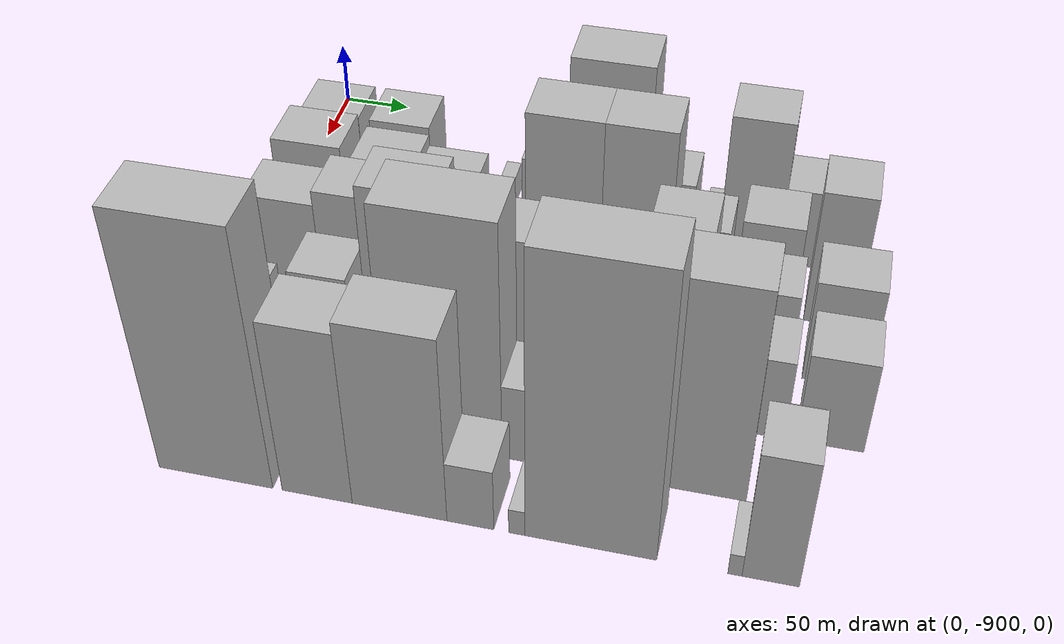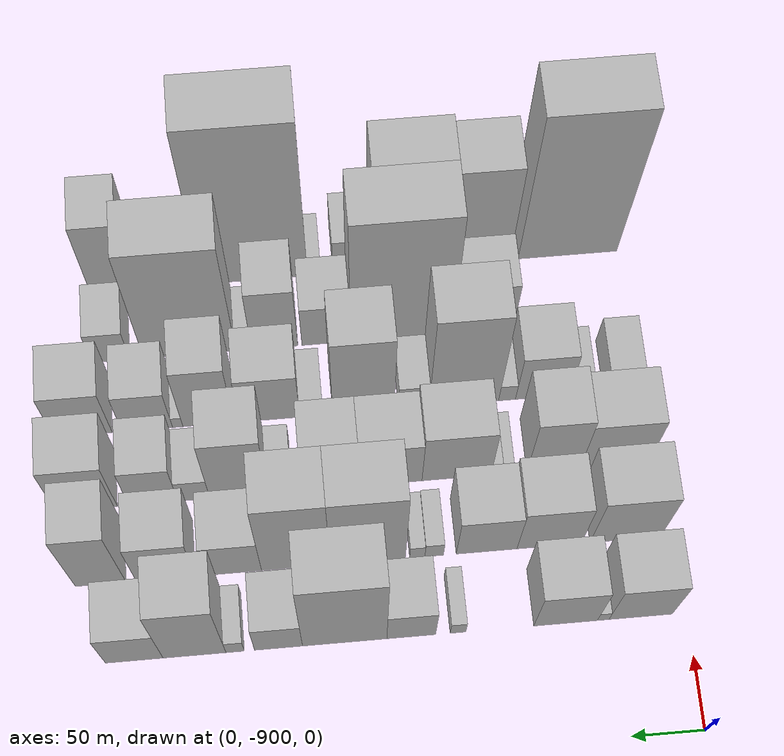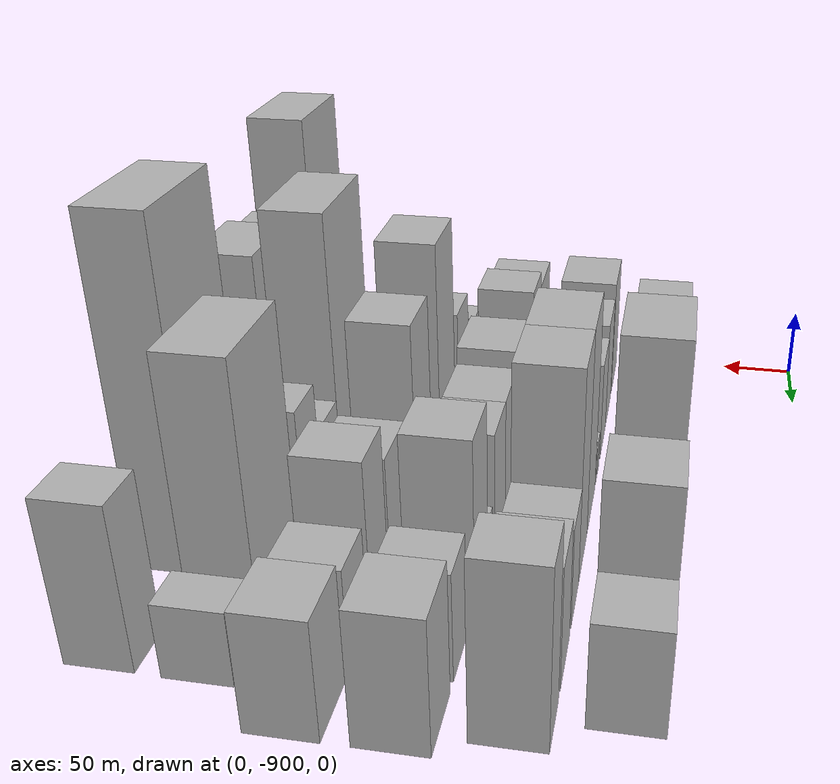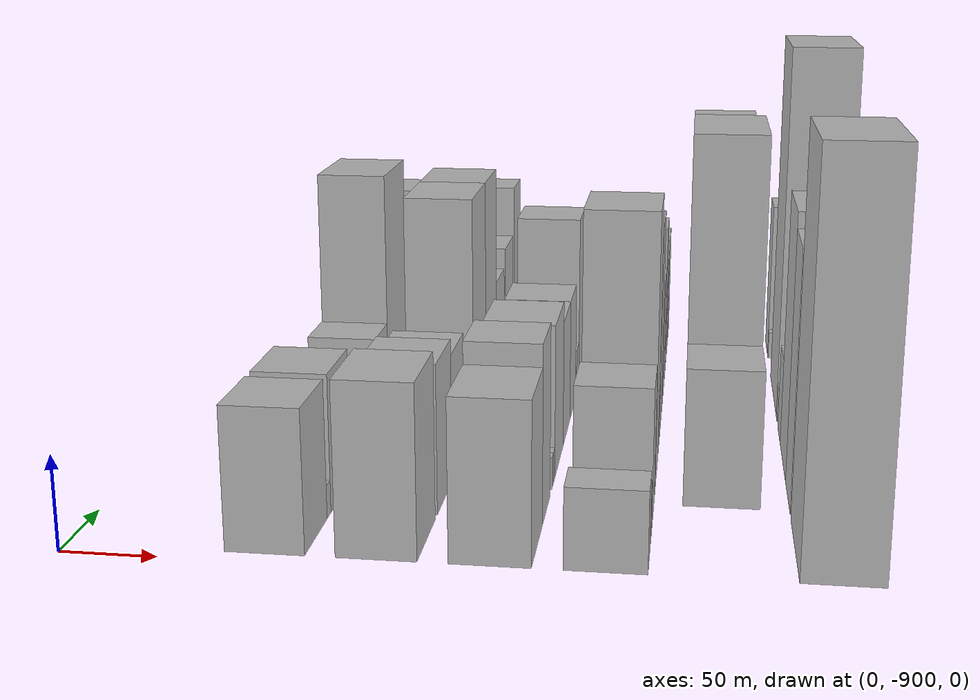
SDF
<sdf version="1.6">
 <world name="default">
  <model name="building_1">
   <static>1</static>
   <pose>100.0000 -868.0949 0 0.000000 0.000000 0.000000</pose>
   <link name="link">
    <pose>0 0 37.50 0 0 0</pose>
    <collision name="collision"><geometry><box><size>40.0000 43.8102 75.0000</size></box></geometry></collision>
    <visual name="visual">
     <cast_shadows>0</cast_shadows>
     <geometry><box><size>40.0000 43.8102 75.0000</size></box></geometry>
     <material>
      <script>
       <uri>model://HANNAS_wall/materials/scripts</uri>
       <uri>model://HANNAS_wall/materials/textures</uri>
       <name>vrc/HANNAS_wall</name>
      </script>
     </material>
    </visual>
   </link>
  </model>
  <model name="building_2">
   <static>1</static>
   <pose>100.0000 -842.1908 0 0.000000 0.000000 0.000000</pose>
   <link name="link">
    <pose>0 0 9.00 0 0 0</pose>
    <collision name="collision"><geometry><box><size>40.0000 7.9980 18.0000</size></box></geometry></collision>
    <visual name="visual">
     <cast_shadows>0</cast_shadows>
     <geometry><box><size>40.0000 7.9980 18.0000</size></box></geometry>
     <material>
      <script>
       <uri>model://HANNAS_wall/materials/scripts</uri>
       <uri>model://HANNAS_wall/materials/textures</uri>
       <name>vrc/HANNAS_wall</name>
      </script>
     </material>
    </visual>
   </link>
  </model>
  <model name="building_3">
   <static>1</static>
   <pose>100.0000 -816.2501 0 0.000000 0.000000 0.000000</pose>
   <link name="link">
    <pose>0 0 37.50 0 0 0</pose>
    <collision name="collision"><geometry><box><size>40.0000 43.8835 75.0000</size></box></geometry></collision>
    <visual name="visual">
     <cast_shadows>0</cast_shadows>
     <geometry><box><size>40.0000 43.8835 75.0000</size></box></geometry>
     <material>
      <script>
       <uri>model://HANNAS_wall/materials/scripts</uri>
       <uri>model://HANNAS_wall/materials/textures</uri>
       <name>vrc/HANNAS_wall</name>
      </script>
     </material>
    </visual>
   </link>
  </model>
  <model name="building_4">
   <static>1</static>
   <pose>100.0000 -742.1931 0 0.000000 0.000000 0.000000</pose>
   <link name="link">
    <pose>0 0 12.00 0 0 0</pose>
    <collision name="collision"><geometry><box><size>40.0000 10.7435 24.0000</size></box></geometry></collision>
    <visual name="visual">
     <cast_shadows>0</cast_shadows>
     <geometry><box><size>40.0000 10.7435 24.0000</size></box></geometry>
     <material>
      <script>
       <uri>model://HANNAS_wall/materials/scripts</uri>
       <uri>model://HANNAS_wall/materials/textures</uri>
       <name>vrc/HANNAS_wall</name>
      </script>
     </material>
    </visual>
   </link>
  </model>
  <model name="building_5">
   <static>1</static>
   <pose>100.0000 -710.1252 0 0.000000 0.000000 0.000000</pose>
   <link name="link">
    <pose>0 0 30.00 0 0 0</pose>
    <collision name="collision"><geometry><box><size>40.0000 33.3923 60.0000</size></box></geometry></collision>
    <visual name="visual">
     <cast_shadows>0</cast_shadows>
     <geometry><box><size>40.0000 33.3923 60.0000</size></box></geometry>
     <material>
      <script>
       <uri>model://HANNAS_wall/materials/scripts</uri>
       <uri>model://HANNAS_wall/materials/textures</uri>
       <name>vrc/HANNAS_wall</name>
      </script>
     </material>
    </visual>
   </link>
  </model>
  <model name="building_6">
   <static>1</static>
   <pose>100.0000 -664.6134 0 0.000000 0.000000 0.000000</pose>
   <link name="link">
    <pose>0 0 75.00 0 0 0</pose>
    <collision name="collision"><geometry><box><size>40.0000 57.6314 150.0000</size></box></geometry></collision>
    <visual name="visual">
     <cast_shadows>0</cast_shadows>
     <geometry><box><size>40.0000 57.6314 150.0000</size></box></geometry>
     <material>
      <script>
       <uri>model://HANNAS_wall/materials/scripts</uri>
       <uri>model://HANNAS_wall/materials/textures</uri>
       <name>vrc/HANNAS_wall</name>
      </script>
     </material>
    </visual>
   </link>
  </model>
  <model name="building_7">
   <static>1</static>
   <pose>100.0000 -619.4495 0 0.000000 0.000000 0.000000</pose>
   <link name="link">
    <pose>0 0 28.50 0 0 0</pose>
    <collision name="collision"><geometry><box><size>40.0000 32.6963 57.0000</size></box></geometry></collision>
    <visual name="visual">
     <cast_shadows>0</cast_shadows>
     <geometry><box><size>40.0000 32.6963 57.0000</size></box></geometry>
     <material>
      <script>
       <uri>model://HANNAS_wall/materials/scripts</uri>
       <uri>model://HANNAS_wall/materials/textures</uri>
       <name>vrc/HANNAS_wall</name>
      </script>
     </material>
    </visual>
   </link>
  </model>
  <model name="building_8">
   <static>1</static>
   <pose>100.0000 -589.8575 0 0.000000 0.000000 0.000000</pose>
   <link name="link">
    <pose>0 0 13.50 0 0 0</pose>
    <collision name="collision"><geometry><box><size>40.0000 12.4877 27.0000</size></box></geometry></collision>
    <visual name="visual">
     <cast_shadows>0</cast_shadows>
     <geometry><box><size>40.0000 12.4877 27.0000</size></box></geometry>
     <material>
      <script>
       <uri>model://HANNAS_wall/materials/scripts</uri>
       <uri>model://HANNAS_wall/materials/textures</uri>
       <name>vrc/HANNAS_wall</name>
      </script>
     </material>
    </visual>
   </link>
  </model>
  <model name="building_9">
   <static>1</static>
   <pose>100.0000 -562.2363 0 0.000000 0.000000 0.000000</pose>
   <link name="link">
    <pose>0 0 60.00 0 0 0</pose>
    <collision name="collision"><geometry><box><size>40.0000 42.7547 120.0000</size></box></geometry></collision>
    <visual name="visual">
     <cast_shadows>0</cast_shadows>
     <geometry><box><size>40.0000 42.7547 120.0000</size></box></geometry>
     <material>
      <script>
       <uri>model://HANNAS_wall/materials/scripts</uri>
       <uri>model://HANNAS_wall/materials/textures</uri>
       <name>vrc/HANNAS_wall</name>
      </script>
     </material>
    </visual>
   </link>
  </model>
  <model name="building_10">
   <static>1</static>
   <pose>100.0000 -521.3223 0 0.000000 0.000000 0.000000</pose>
   <link name="link">
    <pose>0 0 33.00 0 0 0</pose>
    <collision name="collision"><geometry><box><size>40.0000 39.0733 66.0000</size></box></geometry></collision>
    <visual name="visual">
     <cast_shadows>0</cast_shadows>
     <geometry><box><size>40.0000 39.0733 66.0000</size></box></geometry>
     <material>
      <script>
       <uri>model://HANNAS_wall/materials/scripts</uri>
       <uri>model://HANNAS_wall/materials/textures</uri>
       <name>vrc/HANNAS_wall</name>
      </script>
     </material>
    </visual>
   </link>
  </model>
  <model name="building_47">
   <static>1</static>
   <pose>155.0000 -865.2218 0 0.000000 0.000000 0.000000</pose>
   <link name="link">
    <pose>0 0 45.00 0 0 0</pose>
    <collision name="collision"><geometry><box><size>40.0000 49.5564 90.0000</size></box></geometry></collision>
    <visual name="visual">
     <cast_shadows>0</cast_shadows>
     <geometry><box><size>40.0000 49.5564 90.0000</size></box></geometry>
     <material>
      <script>
       <uri>model://HANNAS_wall/materials/scripts</uri>
       <uri>model://HANNAS_wall/materials/textures</uri>
       <name>vrc/HANNAS_wall</name>
      </script>
     </material>
    </visual>
   </link>
  </model>
  <model name="building_48">
   <static>1</static>
   <pose>155.0000 -811.8589 0 0.000000 0.000000 0.000000</pose>
   <link name="link">
    <pose>0 0 40.50 0 0 0</pose>
    <collision name="collision"><geometry><box><size>40.0000 45.1695 81.0000</size></box></geometry></collision>
    <visual name="visual">
     <cast_shadows>0</cast_shadows>
     <geometry><box><size>40.0000 45.1695 81.0000</size></box></geometry>
     <material>
      <script>
       <uri>model://HANNAS_wall/materials/scripts</uri>
       <uri>model://HANNAS_wall/materials/textures</uri>
       <name>vrc/HANNAS_wall</name>
      </script>
     </material>
    </visual>
   </link>
  </model>
  <model name="building_49">
   <static>1</static>
   <pose>155.0000 -768.0839 0 0.000000 0.000000 0.000000</pose>
   <link name="link">
    <pose>0 0 36.00 0 0 0</pose>
    <collision name="collision"><geometry><box><size>40.0000 42.3805 72.0000</size></box></geometry></collision>
    <visual name="visual">
     <cast_shadows>0</cast_shadows>
     <geometry><box><size>40.0000 42.3805 72.0000</size></box></geometry>
     <material>
      <script>
       <uri>model://HANNAS_wall/materials/scripts</uri>
       <uri>model://HANNAS_wall/materials/textures</uri>
       <name>vrc/HANNAS_wall</name>
      </script>
     </material>
    </visual>
   </link>
  </model>
  <model name="building_50">
   <static>1</static>
   <pose>155.0000 -731.4142 0 0.000000 0.000000 0.000000</pose>
   <link name="link">
    <pose>0 0 13.50 0 0 0</pose>
    <collision name="collision"><geometry><box><size>40.0000 12.9589 27.0000</size></box></geometry></collision>
    <visual name="visual">
     <cast_shadows>0</cast_shadows>
     <geometry><box><size>40.0000 12.9589 27.0000</size></box></geometry>
     <material>
      <script>
       <uri>model://HANNAS_wall/materials/scripts</uri>
       <uri>model://HANNAS_wall/materials/textures</uri>
       <name>vrc/HANNAS_wall</name>
      </script>
     </material>
    </visual>
   </link>
  </model>
  <model name="building_51">
   <static>1</static>
   <pose>155.0000 -719.6520 0 0.000000 0.000000 0.000000</pose>
   <link name="link">
    <pose>0 0 12.00 0 0 0</pose>
    <collision name="collision"><geometry><box><size>40.0000 10.5655 24.0000</size></box></geometry></collision>
    <visual name="visual">
     <cast_shadows>0</cast_shadows>
     <geometry><box><size>40.0000 10.5655 24.0000</size></box></geometry>
     <material>
      <script>
       <uri>model://HANNAS_wall/materials/scripts</uri>
       <uri>model://HANNAS_wall/materials/textures</uri>
       <name>vrc/HANNAS_wall</name>
      </script>
     </material>
    </visual>
   </link>
  </model>
  <model name="building_52">
   <static>1</static>
   <pose>155.0000 -685.2314 0 0.000000 0.000000 0.000000</pose>
   <link name="link">
    <pose>0 0 70.50 0 0 0</pose>
    <collision name="collision"><geometry><box><size>40.0000 52.2758 141.0000</size></box></geometry></collision>
    <visual name="visual">
     <cast_shadows>0</cast_shadows>
     <geometry><box><size>40.0000 52.2758 141.0000</size></box></geometry>
     <material>
      <script>
       <uri>model://HANNAS_wall/materials/scripts</uri>
       <uri>model://HANNAS_wall/materials/textures</uri>
       <name>vrc/HANNAS_wall</name>
      </script>
     </material>
    </visual>
   </link>
  </model>
  <model name="building_53">
   <static>1</static>
   <pose>155.0000 -635.2812 0 0.000000 0.000000 0.000000</pose>
   <link name="link">
    <pose>0 0 70.50 0 0 0</pose>
    <collision name="collision"><geometry><box><size>40.0000 47.6245 141.0000</size></box></geometry></collision>
    <visual name="visual">
     <cast_shadows>0</cast_shadows>
     <geometry><box><size>40.0000 47.6245 141.0000</size></box></geometry>
     <material>
      <script>
       <uri>model://HANNAS_wall/materials/scripts</uri>
       <uri>model://HANNAS_wall/materials/textures</uri>
       <name>vrc/HANNAS_wall</name>
      </script>
     </material>
    </visual>
   </link>
  </model>
  <model name="building_54">
   <static>1</static>
   <pose>155.0000 -592.0700 0 0.000000 0.000000 0.000000</pose>
   <link name="link">
    <pose>0 0 33.00 0 0 0</pose>
    <collision name="collision"><geometry><box><size>40.0000 38.7978 66.0000</size></box></geometry></collision>
    <visual name="visual">
     <cast_shadows>0</cast_shadows>
     <geometry><box><size>40.0000 38.7978 66.0000</size></box></geometry>
     <material>
      <script>
       <uri>model://HANNAS_wall/materials/scripts</uri>
       <uri>model://HANNAS_wall/materials/textures</uri>
       <name>vrc/HANNAS_wall</name>
      </script>
     </material>
    </visual>
   </link>
  </model>
  <model name="building_55">
   <static>1</static>
   <pose>155.0000 -545.2420 0 0.000000 0.000000 0.000000</pose>
   <link name="link">
    <pose>0 0 39.00 0 0 0</pose>
    <collision name="collision"><geometry><box><size>40.0000 40.8582 78.0000</size></box></geometry></collision>
    <visual name="visual">
     <cast_shadows>0</cast_shadows>
     <geometry><box><size>40.0000 40.8582 78.0000</size></box></geometry>
     <material>
      <script>
       <uri>model://HANNAS_wall/materials/scripts</uri>
       <uri>model://HANNAS_wall/materials/textures</uri>
       <name>vrc/HANNAS_wall</name>
      </script>
     </material>
    </visual>
   </link>
  </model>
  <model name="building_56">
   <static>1</static>
   <pose>155.0000 -500.3482 0 0.000000 0.000000 0.000000</pose>
   <link name="link">
    <pose>0 0 55.50 0 0 0</pose>
    <collision name="collision"><geometry><box><size>40.0000 34.9295 111.0000</size></box></geometry></collision>
    <visual name="visual">
     <cast_shadows>0</cast_shadows>
     <geometry><box><size>40.0000 34.9295 111.0000</size></box></geometry>
     <material>
      <script>
       <uri>model://HANNAS_wall/materials/scripts</uri>
       <uri>model://HANNAS_wall/materials/textures</uri>
       <name>vrc/HANNAS_wall</name>
      </script>
     </material>
    </visual>
   </link>
  </model>
  <model name="building_95">
   <static>1</static>
   <pose>210.0000 -865.4552 0 0.000000 0.000000 0.000000</pose>
   <link name="link">
    <pose>0 0 42.00 0 0 0</pose>
    <collision name="collision"><geometry><box><size>40.0000 49.0895 84.0000</size></box></geometry></collision>
    <visual name="visual">
     <cast_shadows>0</cast_shadows>
     <geometry><box><size>40.0000 49.0895 84.0000</size></box></geometry>
     <material>
      <script>
       <uri>model://HANNAS_wall/materials/scripts</uri>
       <uri>model://HANNAS_wall/materials/textures</uri>
       <name>vrc/HANNAS_wall</name>
      </script>
     </material>
    </visual>
   </link>
  </model>
  <model name="building_96">
   <static>1</static>
   <pose>210.0000 -821.8817 0 0.000000 0.000000 0.000000</pose>
   <link name="link">
    <pose>0 0 48.00 0 0 0</pose>
    <collision name="collision"><geometry><box><size>40.0000 38.0575 96.0000</size></box></geometry></collision>
    <visual name="visual">
     <cast_shadows>0</cast_shadows>
     <geometry><box><size>40.0000 38.0575 96.0000</size></box></geometry>
     <material>
      <script>
       <uri>model://HANNAS_wall/materials/scripts</uri>
       <uri>model://HANNAS_wall/materials/textures</uri>
       <name>vrc/HANNAS_wall</name>
      </script>
     </material>
    </visual>
   </link>
  </model>
  <model name="building_97">
   <static>1</static>
   <pose>210.0000 -789.0530 0 0.000000 0.000000 0.000000</pose>
   <link name="link">
    <pose>0 0 9.00 0 0 0</pose>
    <collision name="collision"><geometry><box><size>40.0000 7.5998 18.0000</size></box></geometry></collision>
    <visual name="visual">
     <cast_shadows>0</cast_shadows>
     <geometry><box><size>40.0000 7.5998 18.0000</size></box></geometry>
     <material>
      <script>
       <uri>model://HANNAS_wall/materials/scripts</uri>
       <uri>model://HANNAS_wall/materials/textures</uri>
       <name>vrc/HANNAS_wall</name>
      </script>
     </material>
    </visual>
   </link>
  </model>
  <model name="building_98">
   <static>1</static>
   <pose>210.0000 -781.3025 0 0.000000 0.000000 0.000000</pose>
   <link name="link">
    <pose>0 0 9.00 0 0 0</pose>
    <collision name="collision"><geometry><box><size>40.0000 7.9013 18.0000</size></box></geometry></collision>
    <visual name="visual">
     <cast_shadows>0</cast_shadows>
     <geometry><box><size>40.0000 7.9013 18.0000</size></box></geometry>
     <material>
      <script>
       <uri>model://HANNAS_wall/materials/scripts</uri>
       <uri>model://HANNAS_wall/materials/textures</uri>
       <name>vrc/HANNAS_wall</name>
      </script>
     </material>
    </visual>
   </link>
  </model>
  <model name="building_99">
   <static>1</static>
   <pose>210.0000 -752.8507 0 0.000000 0.000000 0.000000</pose>
   <link name="link">
    <pose>0 0 43.50 0 0 0</pose>
    <collision name="collision"><geometry><box><size>40.0000 49.0022 87.0000</size></box></geometry></collision>
    <visual name="visual">
     <cast_shadows>0</cast_shadows>
     <geometry><box><size>40.0000 49.0022 87.0000</size></box></geometry>
     <material>
      <script>
       <uri>model://HANNAS_wall/materials/scripts</uri>
       <uri>model://HANNAS_wall/materials/textures</uri>
       <name>vrc/HANNAS_wall</name>
      </script>
     </material>
    </visual>
   </link>
  </model>
  <model name="building_100">
   <static>1</static>
   <pose>210.0000 -706.1151 0 0.000000 0.000000 0.000000</pose>
   <link name="link">
    <pose>0 0 37.50 0 0 0</pose>
    <collision name="collision"><geometry><box><size>40.0000 44.4690 75.0000</size></box></geometry></collision>
    <visual name="visual">
     <cast_shadows>0</cast_shadows>
     <geometry><box><size>40.0000 44.4690 75.0000</size></box></geometry>
     <material>
      <script>
       <uri>model://HANNAS_wall/materials/scripts</uri>
       <uri>model://HANNAS_wall/materials/textures</uri>
       <name>vrc/HANNAS_wall</name>
      </script>
     </material>
    </visual>
   </link>
  </model>
  <model name="building_101">
   <static>1</static>
   <pose>210.0000 -663.8506 0 0.000000 0.000000 0.000000</pose>
   <link name="link">
    <pose>0 0 37.50 0 0 0</pose>
    <collision name="collision"><geometry><box><size>40.0000 40.0600 75.0000</size></box></geometry></collision>
    <visual name="visual">
     <cast_shadows>0</cast_shadows>
     <geometry><box><size>40.0000 40.0600 75.0000</size></box></geometry>
     <material>
      <script>
       <uri>model://HANNAS_wall/materials/scripts</uri>
       <uri>model://HANNAS_wall/materials/textures</uri>
       <name>vrc/HANNAS_wall</name>
      </script>
     </material>
    </visual>
   </link>
  </model>
  <model name="building_102">
   <static>1</static>
   <pose>210.0000 -628.2362 0 0.000000 0.000000 0.000000</pose>
   <link name="link">
    <pose>0 0 15.00 0 0 0</pose>
    <collision name="collision"><geometry><box><size>40.0000 17.1687 30.0000</size></box></geometry></collision>
    <visual name="visual">
     <cast_shadows>0</cast_shadows>
     <geometry><box><size>40.0000 17.1687 30.0000</size></box></geometry>
     <material>
      <script>
       <uri>model://HANNAS_wall/materials/scripts</uri>
       <uri>model://HANNAS_wall/materials/textures</uri>
       <name>vrc/HANNAS_wall</name>
      </script>
     </material>
    </visual>
   </link>
  </model>
  <model name="building_103">
   <static>1</static>
   <pose>210.0000 -599.2015 0 0.000000 0.000000 0.000000</pose>
   <link name="link">
    <pose>0 0 55.50 0 0 0</pose>
    <collision name="collision"><geometry><box><size>40.0000 40.9006 111.0000</size></box></geometry></collision>
    <visual name="visual">
     <cast_shadows>0</cast_shadows>
     <geometry><box><size>40.0000 40.9006 111.0000</size></box></geometry>
     <material>
      <script>
       <uri>model://HANNAS_wall/materials/scripts</uri>
       <uri>model://HANNAS_wall/materials/textures</uri>
       <name>vrc/HANNAS_wall</name>
      </script>
     </material>
    </visual>
   </link>
  </model>
  <model name="building_104">
   <static>1</static>
   <pose>210.0000 -567.5323 0 0.000000 0.000000 0.000000</pose>
   <link name="link">
    <pose>0 0 19.50 0 0 0</pose>
    <collision name="collision"><geometry><box><size>40.0000 22.4379 39.0000</size></box></geometry></collision>
    <visual name="visual">
     <cast_shadows>0</cast_shadows>
     <geometry><box><size>40.0000 22.4379 39.0000</size></box></geometry>
     <material>
      <script>
       <uri>model://HANNAS_wall/materials/scripts</uri>
       <uri>model://HANNAS_wall/materials/textures</uri>
       <name>vrc/HANNAS_wall</name>
      </script>
     </material>
    </visual>
   </link>
  </model>
  <model name="building_105">
   <static>1</static>
   <pose>210.0000 -539.0008 0 0.000000 0.000000 0.000000</pose>
   <link name="link">
    <pose>0 0 34.50 0 0 0</pose>
    <collision name="collision"><geometry><box><size>40.0000 34.6250 69.0000</size></box></geometry></collision>
    <visual name="visual">
     <cast_shadows>0</cast_shadows>
     <geometry><box><size>40.0000 34.6250 69.0000</size></box></geometry>
     <material>
      <script>
       <uri>model://HANNAS_wall/materials/scripts</uri>
       <uri>model://HANNAS_wall/materials/textures</uri>
       <name>vrc/HANNAS_wall</name>
      </script>
     </material>
    </visual>
   </link>
  </model>
  <model name="building_106">
   <static>1</static>
   <pose>210.0000 -492.1965 0 0.000000 0.000000 0.000000</pose>
   <link name="link">
    <pose>0 0 42.00 0 0 0</pose>
    <collision name="collision"><geometry><box><size>40.0000 42.9836 84.0000</size></box></geometry></collision>
    <visual name="visual">
     <cast_shadows>0</cast_shadows>
     <geometry><box><size>40.0000 42.9836 84.0000</size></box></geometry>
     <material>
      <script>
       <uri>model://HANNAS_wall/materials/scripts</uri>
       <uri>model://HANNAS_wall/materials/textures</uri>
       <name>vrc/HANNAS_wall</name>
      </script>
     </material>
    </visual>
   </link>
  </model>
  <model name="building_145">
   <static>1</static>
   <pose>265.0000 -877.4378 0 0.000000 0.000000 0.000000</pose>
   <link name="link">
    <pose>0 0 21.00 0 0 0</pose>
    <collision name="collision"><geometry><box><size>40.0000 25.1244 42.0000</size></box></geometry></collision>
    <visual name="visual">
     <cast_shadows>0</cast_shadows>
     <geometry><box><size>40.0000 25.1244 42.0000</size></box></geometry>
     <material>
      <script>
       <uri>model://HANNAS_wall/materials/scripts</uri>
       <uri>model://HANNAS_wall/materials/textures</uri>
       <name>vrc/HANNAS_wall</name>
      </script>
     </material>
    </visual>
   </link>
  </model>
  <model name="building_146">
   <static>1</static>
   <pose>265.0000 -847.9490 0 0.000000 0.000000 0.000000</pose>
   <link name="link">
    <pose>0 0 15.00 0 0 0</pose>
    <collision name="collision"><geometry><box><size>40.0000 15.8531 30.0000</size></box></geometry></collision>
    <visual name="visual">
     <cast_shadows>0</cast_shadows>
     <geometry><box><size>40.0000 15.8531 30.0000</size></box></geometry>
     <material>
      <script>
       <uri>model://HANNAS_wall/materials/scripts</uri>
       <uri>model://HANNAS_wall/materials/textures</uri>
       <name>vrc/HANNAS_wall</name>
      </script>
     </material>
    </visual>
   </link>
  </model>
  <model name="building_147">
   <static>1</static>
   <pose>265.0000 -820.6471 0 0.000000 0.000000 0.000000</pose>
   <link name="link">
    <pose>0 0 37.50 0 0 0</pose>
    <collision name="collision"><geometry><box><size>40.0000 38.7506 75.0000</size></box></geometry></collision>
    <visual name="visual">
     <cast_shadows>0</cast_shadows>
     <geometry><box><size>40.0000 38.7506 75.0000</size></box></geometry>
     <material>
      <script>
       <uri>model://HANNAS_wall/materials/scripts</uri>
       <uri>model://HANNAS_wall/materials/textures</uri>
       <name>vrc/HANNAS_wall</name>
      </script>
     </material>
    </visual>
   </link>
  </model>
  <model name="building_148">
   <static>1</static>
   <pose>265.0000 -795.1783 0 0.000000 0.000000 0.000000</pose>
   <link name="link">
    <pose>0 0 13.50 0 0 0</pose>
    <collision name="collision"><geometry><box><size>40.0000 12.1870 27.0000</size></box></geometry></collision>
    <visual name="visual">
     <cast_shadows>0</cast_shadows>
     <geometry><box><size>40.0000 12.1870 27.0000</size></box></geometry>
     <material>
      <script>
       <uri>model://HANNAS_wall/materials/scripts</uri>
       <uri>model://HANNAS_wall/materials/textures</uri>
       <name>vrc/HANNAS_wall</name>
      </script>
     </material>
    </visual>
   </link>
  </model>
  <model name="building_149">
   <static>1</static>
   <pose>265.0000 -763.9732 0 0.000000 0.000000 0.000000</pose>
   <link name="link">
    <pose>0 0 76.50 0 0 0</pose>
    <collision name="collision"><geometry><box><size>40.0000 50.2233 153.0000</size></box></geometry></collision>
    <visual name="visual">
     <cast_shadows>0</cast_shadows>
     <geometry><box><size>40.0000 50.2233 153.0000</size></box></geometry>
     <material>
      <script>
       <uri>model://HANNAS_wall/materials/scripts</uri>
       <uri>model://HANNAS_wall/materials/textures</uri>
       <name>vrc/HANNAS_wall</name>
      </script>
     </material>
    </visual>
   </link>
  </model>
  <model name="building_150">
   <static>1</static>
   <pose>265.0000 -727.8759 0 0.000000 0.000000 0.000000</pose>
   <link name="link">
    <pose>0 0 19.50 0 0 0</pose>
    <collision name="collision"><geometry><box><size>40.0000 21.9713 39.0000</size></box></geometry></collision>
    <visual name="visual">
     <cast_shadows>0</cast_shadows>
     <geometry><box><size>40.0000 21.9713 39.0000</size></box></geometry>
     <material>
      <script>
       <uri>model://HANNAS_wall/materials/scripts</uri>
       <uri>model://HANNAS_wall/materials/textures</uri>
       <name>vrc/HANNAS_wall</name>
      </script>
     </material>
    </visual>
   </link>
  </model>
  <model name="building_151">
   <static>1</static>
   <pose>265.0000 -691.7806 0 0.000000 0.000000 0.000000</pose>
   <link name="link">
    <pose>0 0 64.50 0 0 0</pose>
    <collision name="collision"><geometry><box><size>40.0000 44.2192 129.0000</size></box></geometry></collision>
    <visual name="visual">
     <cast_shadows>0</cast_shadows>
     <geometry><box><size>40.0000 44.2192 129.0000</size></box></geometry>
     <material>
      <script>
       <uri>model://HANNAS_wall/materials/scripts</uri>
       <uri>model://HANNAS_wall/materials/textures</uri>
       <name>vrc/HANNAS_wall</name>
      </script>
     </material>
    </visual>
   </link>
  </model>
  <model name="building_152">
   <static>1</static>
   <pose>265.0000 -654.3883 0 0.000000 0.000000 0.000000</pose>
   <link name="link">
    <pose>0 0 15.00 0 0 0</pose>
    <collision name="collision"><geometry><box><size>40.0000 16.5653 30.0000</size></box></geometry></collision>
    <visual name="visual">
     <cast_shadows>0</cast_shadows>
     <geometry><box><size>40.0000 16.5653 30.0000</size></box></geometry>
     <material>
      <script>
       <uri>model://HANNAS_wall/materials/scripts</uri>
       <uri>model://HANNAS_wall/materials/textures</uri>
       <name>vrc/HANNAS_wall</name>
      </script>
     </material>
    </visual>
   </link>
  </model>
  <model name="building_153">
   <static>1</static>
   <pose>265.0000 -624.5484 0 0.000000 0.000000 0.000000</pose>
   <link name="link">
    <pose>0 0 39.00 0 0 0</pose>
    <collision name="collision"><geometry><box><size>40.0000 43.1147 78.0000</size></box></geometry></collision>
    <visual name="visual">
     <cast_shadows>0</cast_shadows>
     <geometry><box><size>40.0000 43.1147 78.0000</size></box></geometry>
     <material>
      <script>
       <uri>model://HANNAS_wall/materials/scripts</uri>
       <uri>model://HANNAS_wall/materials/textures</uri>
       <name>vrc/HANNAS_wall</name>
      </script>
     </material>
    </visual>
   </link>
  </model>
  <model name="building_154">
   <static>1</static>
   <pose>265.0000 -580.7029 0 0.000000 0.000000 0.000000</pose>
   <link name="link">
    <pose>0 0 51.00 0 0 0</pose>
    <collision name="collision"><geometry><box><size>40.0000 36.5763 102.0000</size></box></geometry></collision>
    <visual name="visual">
     <cast_shadows>0</cast_shadows>
     <geometry><box><size>40.0000 36.5763 102.0000</size></box></geometry>
     <material>
      <script>
       <uri>model://HANNAS_wall/materials/scripts</uri>
       <uri>model://HANNAS_wall/materials/textures</uri>
       <name>vrc/HANNAS_wall</name>
      </script>
     </material>
    </visual>
   </link>
  </model>
  <model name="building_155">
   <static>1</static>
   <pose>265.0000 -558.7448 0 0.000000 0.000000 0.000000</pose>
   <link name="link">
    <pose>0 0 9.00 0 0 0</pose>
    <collision name="collision"><geometry><box><size>40.0000 7.3399 18.0000</size></box></geometry></collision>
    <visual name="visual">
     <cast_shadows>0</cast_shadows>
     <geometry><box><size>40.0000 7.3399 18.0000</size></box></geometry>
     <material>
      <script>
       <uri>model://HANNAS_wall/materials/scripts</uri>
       <uri>model://HANNAS_wall/materials/textures</uri>
       <name>vrc/HANNAS_wall</name>
      </script>
     </material>
    </visual>
   </link>
  </model>
  <model name="building_156">
   <static>1</static>
   <pose>265.0000 -537.0565 0 0.000000 0.000000 0.000000</pose>
   <link name="link">
    <pose>0 0 33.00 0 0 0</pose>
    <collision name="collision"><geometry><box><size>40.0000 36.0367 66.0000</size></box></geometry></collision>
    <visual name="visual">
     <cast_shadows>0</cast_shadows>
     <geometry><box><size>40.0000 36.0367 66.0000</size></box></geometry>
     <material>
      <script>
       <uri>model://HANNAS_wall/materials/scripts</uri>
       <uri>model://HANNAS_wall/materials/textures</uri>
       <name>vrc/HANNAS_wall</name>
      </script>
     </material>
    </visual>
   </link>
  </model>
  <model name="building_157">
   <static>1</static>
   <pose>265.0000 -491.2079 0 0.000000 0.000000 0.000000</pose>
   <link name="link">
    <pose>0 0 37.50 0 0 0</pose>
    <collision name="collision"><geometry><box><size>40.0000 41.6603 75.0000</size></box></geometry></collision>
    <visual name="visual">
     <cast_shadows>0</cast_shadows>
     <geometry><box><size>40.0000 41.6603 75.0000</size></box></geometry>
     <material>
      <script>
       <uri>model://HANNAS_wall/materials/scripts</uri>
       <uri>model://HANNAS_wall/materials/textures</uri>
       <name>vrc/HANNAS_wall</name>
      </script>
     </material>
    </visual>
   </link>
  </model>
  <model name="building_198">
   <static>1</static>
   <pose>320.0000 -784.0063 0 0.000000 0.000000 0.000000</pose>
   <link name="link">
    <pose>0 0 37.50 0 0 0</pose>
    <collision name="collision"><geometry><box><size>40.0000 44.6625 75.0000</size></box></geometry></collision>
    <visual name="visual">
     <cast_shadows>0</cast_shadows>
     <geometry><box><size>40.0000 44.6625 75.0000</size></box></geometry>
     <material>
      <script>
       <uri>model://HANNAS_wall/materials/scripts</uri>
       <uri>model://HANNAS_wall/materials/textures</uri>
       <name>vrc/HANNAS_wall</name>
      </script>
     </material>
    </visual>
   </link>
  </model>
  <model name="building_199">
   <static>1</static>
   <pose>320.0000 -724.4553 0 0.000000 0.000000 0.000000</pose>
   <link name="link">
    <pose>0 0 94.50 0 0 0</pose>
    <collision name="collision"><geometry><box><size>40.0000 74.4394 189.0000</size></box></geometry></collision>
    <visual name="visual">
     <cast_shadows>0</cast_shadows>
     <geometry><box><size>40.0000 74.4394 189.0000</size></box></geometry>
     <material>
      <script>
       <uri>model://HANNAS_wall/materials/scripts</uri>
       <uri>model://HANNAS_wall/materials/textures</uri>
       <name>vrc/HANNAS_wall</name>
      </script>
     </material>
    </visual>
   </link>
  </model>
  <model name="building_200">
   <static>1</static>
   <pose>320.0000 -669.4619 0 0.000000 0.000000 0.000000</pose>
   <link name="link">
    <pose>0 0 31.50 0 0 0</pose>
    <collision name="collision"><geometry><box><size>40.0000 35.5474 63.0000</size></box></geometry></collision>
    <visual name="visual">
     <cast_shadows>0</cast_shadows>
     <geometry><box><size>40.0000 35.5474 63.0000</size></box></geometry>
     <material>
      <script>
       <uri>model://HANNAS_wall/materials/scripts</uri>
       <uri>model://HANNAS_wall/materials/textures</uri>
       <name>vrc/HANNAS_wall</name>
      </script>
     </material>
    </visual>
   </link>
  </model>
  <model name="building_201">
   <static>1</static>
   <pose>320.0000 -631.8112 0 0.000000 0.000000 0.000000</pose>
   <link name="link">
    <pose>0 0 48.00 0 0 0</pose>
    <collision name="collision"><geometry><box><size>40.0000 33.7541 96.0000</size></box></geometry></collision>
    <visual name="visual">
     <cast_shadows>0</cast_shadows>
     <geometry><box><size>40.0000 33.7541 96.0000</size></box></geometry>
     <material>
      <script>
       <uri>model://HANNAS_wall/materials/scripts</uri>
       <uri>model://HANNAS_wall/materials/textures</uri>
       <name>vrc/HANNAS_wall</name>
      </script>
     </material>
    </visual>
   </link>
  </model>
  <model name="building_202">
   <static>1</static>
   <pose>320.0000 -609.2391 0 0.000000 0.000000 0.000000</pose>
   <link name="link">
    <pose>0 0 12.00 0 0 0</pose>
    <collision name="collision"><geometry><box><size>40.0000 11.3901 24.0000</size></box></geometry></collision>
    <visual name="visual">
     <cast_shadows>0</cast_shadows>
     <geometry><box><size>40.0000 11.3901 24.0000</size></box></geometry>
     <material>
      <script>
       <uri>model://HANNAS_wall/materials/scripts</uri>
       <uri>model://HANNAS_wall/materials/textures</uri>
       <name>vrc/HANNAS_wall</name>
      </script>
     </material>
    </visual>
   </link>
  </model>
  <model name="building_203">
   <static>1</static>
   <pose>320.0000 -570.0653 0 0.000000 0.000000 0.000000</pose>
   <link name="link">
    <pose>0 0 85.50 0 0 0</pose>
    <collision name="collision"><geometry><box><size>40.0000 66.9574 171.0000</size></box></geometry></collision>
    <visual name="visual">
     <cast_shadows>0</cast_shadows>
     <geometry><box><size>40.0000 66.9574 171.0000</size></box></geometry>
     <material>
      <script>
       <uri>model://HANNAS_wall/materials/scripts</uri>
       <uri>model://HANNAS_wall/materials/textures</uri>
       <name>vrc/HANNAS_wall</name>
      </script>
     </material>
    </visual>
   </link>
  </model>
  <model name="building_204">
   <static>1</static>
   <pose>320.0000 -512.7599 0 0.000000 0.000000 0.000000</pose>
   <link name="link">
    <pose>0 0 24.00 0 0 0</pose>
    <collision name="collision"><geometry><box><size>40.0000 27.6534 48.0000</size></box></geometry></collision>
    <visual name="visual">
     <cast_shadows>0</cast_shadows>
     <geometry><box><size>40.0000 27.6534 48.0000</size></box></geometry>
     <material>
      <script>
       <uri>model://HANNAS_wall/materials/scripts</uri>
       <uri>model://HANNAS_wall/materials/textures</uri>
       <name>vrc/HANNAS_wall</name>
      </script>
     </material>
    </visual>
   </link>
  </model>
  <model name="building_250">
   <static>1</static>
   <pose>375.0000 -853.1906 0 0.000000 0.000000 0.000000</pose>
   <link name="link">
    <pose>0 0 103.50 0 0 0</pose>
    <collision name="collision"><geometry><box><size>40.0000 73.6188 207.0000</size></box></geometry></collision>
    <visual name="visual">
     <cast_shadows>0</cast_shadows>
     <geometry><box><size>40.0000 73.6188 207.0000</size></box></geometry>
     <material>
      <script>
       <uri>model://HANNAS_wall/materials/scripts</uri>
       <uri>model://HANNAS_wall/materials/textures</uri>
       <name>vrc/HANNAS_wall</name>
      </script>
     </material>
    </visual>
   </link>
  </model>
  <model name="building_251">
   <static>1</static>
   <pose>375.0000 -788.2045 0 0.000000 0.000000 0.000000</pose>
   <link name="link">
    <pose>0 0 70.50 0 0 0</pose>
    <collision name="collision"><geometry><box><size>40.0000 44.3534 141.0000</size></box></geometry></collision>
    <visual name="visual">
     <cast_shadows>0</cast_shadows>
     <geometry><box><size>40.0000 44.3534 141.0000</size></box></geometry>
     <material>
      <script>
       <uri>model://HANNAS_wall/materials/scripts</uri>
       <uri>model://HANNAS_wall/materials/textures</uri>
       <name>vrc/HANNAS_wall</name>
      </script>
     </material>
    </visual>
   </link>
  </model>
  <model name="building_252">
   <static>1</static>
   <pose>375.0000 -736.6601 0 0.000000 0.000000 0.000000</pose>
   <link name="link">
    <pose>0 0 75.00 0 0 0</pose>
    <collision name="collision"><geometry><box><size>40.0000 58.7355 150.0000</size></box></geometry></collision>
    <visual name="visual">
     <cast_shadows>0</cast_shadows>
     <geometry><box><size>40.0000 58.7355 150.0000</size></box></geometry>
     <material>
      <script>
       <uri>model://HANNAS_wall/materials/scripts</uri>
       <uri>model://HANNAS_wall/materials/textures</uri>
       <name>vrc/HANNAS_wall</name>
      </script>
     </material>
    </visual>
   </link>
  </model>
  <model name="building_253">
   <static>1</static>
   <pose>375.0000 -692.9811 0 0.000000 0.000000 0.000000</pose>
   <link name="link">
    <pose>0 0 25.50 0 0 0</pose>
    <collision name="collision"><geometry><box><size>40.0000 28.6225 51.0000</size></box></geometry></collision>
    <visual name="visual">
     <cast_shadows>0</cast_shadows>
     <geometry><box><size>40.0000 28.6225 51.0000</size></box></geometry>
     <material>
      <script>
       <uri>model://HANNAS_wall/materials/scripts</uri>
       <uri>model://HANNAS_wall/materials/textures</uri>
       <name>vrc/HANNAS_wall</name>
      </script>
     </material>
    </visual>
   </link>
  </model>
  <model name="building_254">
   <static>1</static>
   <pose>375.0000 -664.7353 0 0.000000 0.000000 0.000000</pose>
   <link name="link">
    <pose>0 0 10.50 0 0 0</pose>
    <collision name="collision"><geometry><box><size>40.0000 9.8691 21.0000</size></box></geometry></collision>
    <visual name="visual">
     <cast_shadows>0</cast_shadows>
     <geometry><box><size>40.0000 9.8691 21.0000</size></box></geometry>
     <material>
      <script>
       <uri>model://HANNAS_wall/materials/scripts</uri>
       <uri>model://HANNAS_wall/materials/textures</uri>
       <name>vrc/HANNAS_wall</name>
      </script>
     </material>
    </visual>
   </link>
  </model>
  <model name="building_255">
   <static>1</static>
   <pose>375.0000 -620.7434 0 0.000000 0.000000 0.000000</pose>
   <link name="link">
    <pose>0 0 112.50 0 0 0</pose>
    <collision name="collision"><geometry><box><size>40.0000 78.1146 225.0000</size></box></geometry></collision>
    <visual name="visual">
     <cast_shadows>0</cast_shadows>
     <geometry><box><size>40.0000 78.1146 225.0000</size></box></geometry>
     <material>
      <script>
       <uri>model://HANNAS_wall/materials/scripts</uri>
       <uri>model://HANNAS_wall/materials/textures</uri>
       <name>vrc/HANNAS_wall</name>
      </script>
     </material>
    </visual>
   </link>
  </model>
  <model name="building_256">
   <static>1</static>
   <pose>375.0000 -536.4252 0 0.000000 0.000000 0.000000</pose>
   <link name="link">
    <pose>0 0 9.00 0 0 0</pose>
    <collision name="collision"><geometry><box><size>40.0000 8.1739 18.0000</size></box></geometry></collision>
    <visual name="visual">
     <cast_shadows>0</cast_shadows>
     <geometry><box><size>40.0000 8.1739 18.0000</size></box></geometry>
     <material>
      <script>
       <uri>model://HANNAS_wall/materials/scripts</uri>
       <uri>model://HANNAS_wall/materials/textures</uri>
       <name>vrc/HANNAS_wall</name>
      </script>
     </material>
    </visual>
   </link>
  </model>
  <model name="building_257">
   <static>1</static>
   <pose>375.0000 -515.9953 0 0.000000 0.000000 0.000000</pose>
   <link name="link">
    <pose>0 0 52.50 0 0 0</pose>
    <collision name="collision"><geometry><box><size>40.0000 32.6858 105.0000</size></box></geometry></collision>
    <visual name="visual">
     <cast_shadows>0</cast_shadows>
     <geometry><box><size>40.0000 32.6858 105.0000</size></box></geometry>
     <material>
      <script>
       <uri>model://HANNAS_wall/materials/scripts</uri>
       <uri>model://HANNAS_wall/materials/textures</uri>
       <name>vrc/HANNAS_wall</name>
      </script>
     </material>
    </visual>
   </link>
  </model>
 </world>
</sdf>
